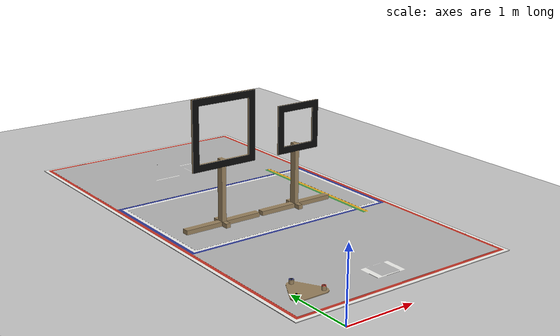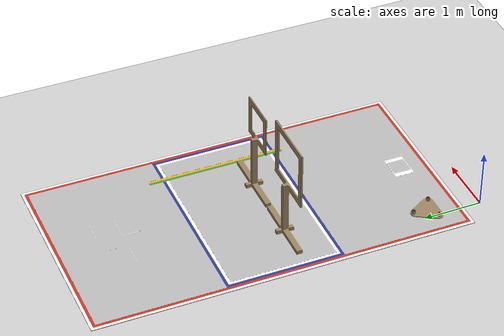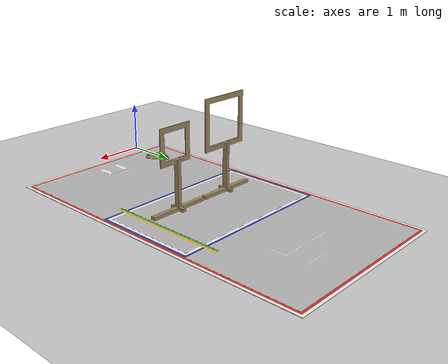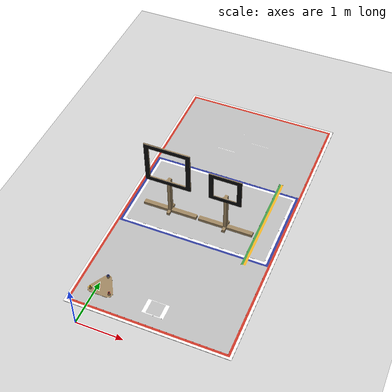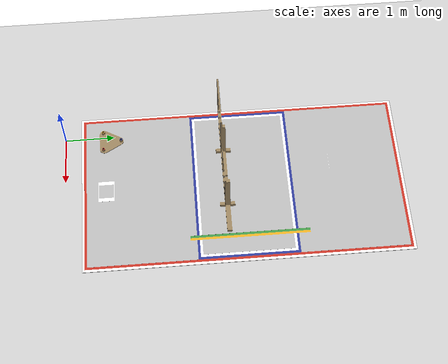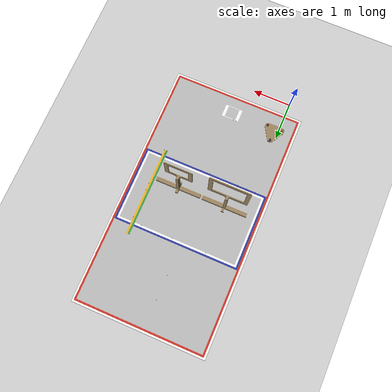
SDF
<?xml version="1.0" encoding="UTF-8"?>
<sdf version="1.9">
  <world name="test_world">
    <physics type="ode">
      <max_step_size>0.004</max_step_size>
      <real_time_factor>1.0</real_time_factor>
      <real_time_update_rate>250</real_time_update_rate>
    </physics>
    <gravity>0 0 -9.8</gravity>
    <magnetic_field>6e-06 2.3e-05 -4.2e-05</magnetic_field>
    <atmosphere type="adiabatic"/>
    <scene>
      <grid>true</grid>
      <ambient>0.4 0.4 0.4 1</ambient>
      <background>0.7 0.7 0.7 1</background>
      <shadows>true</shadows>
    </scene>
    <model name="ground_plane">
      <static>true</static>
      <link name="link">
        <collision name="collision">
          <geometry>
            <plane>
              <normal>0 0 1</normal>
              <size>1 1</size>
            </plane>
          </geometry>
          <surface>
            <friction>
              <ode/>
            </friction>
            <bounce/>
            <contact/>
          </surface>
        </collision>
        <visual name="visual">
          <geometry>
            <plane>
              <normal>0 0 1</normal>
              <size>500 500</size>
            </plane>
          </geometry>
          <material>
            <ambient>0.8 0.8 0.8 1</ambient>
            <diffuse>0.8 0.8 0.8 1</diffuse>
            <specular>0.8 0.8 0.8 1</specular>
          </material>
        </visual>
        <pose>0 0 0 0 0 0</pose>
        <inertial>
          <pose>0 0 0 0 0 0</pose>
          <mass>1</mass>
          <inertia>
            <ixx>1</ixx>
            <ixy>0</ixy>
            <ixz>0</ixz>
            <iyy>1</iyy>
            <iyz>0</iyz>
            <izz>1</izz>
          </inertia>
        </inertial>
        <enable_wind>false</enable_wind>
      </link>
      <pose>0 0 0 0 0 0</pose>
      <self_collide>false</self_collide>
    </model>
    <include>
      <name>test_world</name>
      <uri>model://test_world</uri>
      <pose>0 0 0.05 0 0 0</pose>
    </include>
    <light name="sunUTC" type="directional">
      <pose>0 0 500 0 0 0</pose>
      <cast_shadows>true</cast_shadows>
      <intensity>1</intensity>
      <direction>0.001 0.625 -0.78</direction>
      <diffuse>0.904 0.904 0.904 1</diffuse>
      <specular>0.271 0.271 0.271 1</specular>
      <attenuation>
        <range>2000</range>
        <linear>0</linear>
        <constant>1</constant>
        <quadratic>0</quadratic>
      </attenuation>
      <spot>
        <inner_angle>0</inner_angle>
        <outer_angle>0</outer_angle>
        <falloff>0</falloff>
      </spot>
    </light>
    <spherical_coordinates>
      <surface_model>EARTH_WGS84</surface_model>
      <world_frame_orientation>ENU</world_frame_orientation>
      <latitude_deg>24.623911</latitude_deg>
      <longitude_deg>118.087898</longitude_deg>
      <elevation>0</elevation>
    </spherical_coordinates>
  </world>
</sdf>

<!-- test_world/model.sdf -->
<sdf version='1.9'>
  <model name='test_world'>
    <pose>0 0 0 0 0 0</pose>
    <self_collide>false</self_collide>
    <static>true</static>
    <link name="map">
      <gravity>true</gravity>
      <self_collide>false</self_collide>
      <pose>0 0 0 0 0 0</pose>
      <visual name="visual">
        <pose>0 0 0 0 0 0</pose>
        <geometry>
          <mesh>
            <uri>model://test_world/meshes/test_terrain.dae</uri>
          </mesh>
        </geometry>
      </visual>
      <collision name="collision">
        <pose>0 0 0 0 0 0 </pose>
        <geometry>
          <mesh>
            <uri>model://test_world/meshes/test_terrain.dae</uri>
          </mesh>
        </geometry>
      </collision>
    </link>
  </model>
</sdf>
